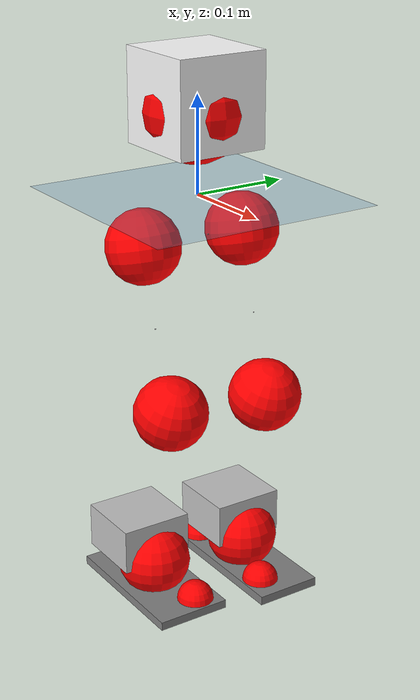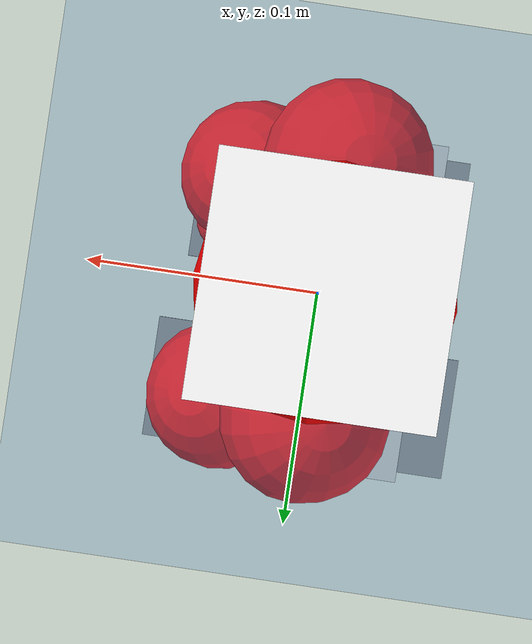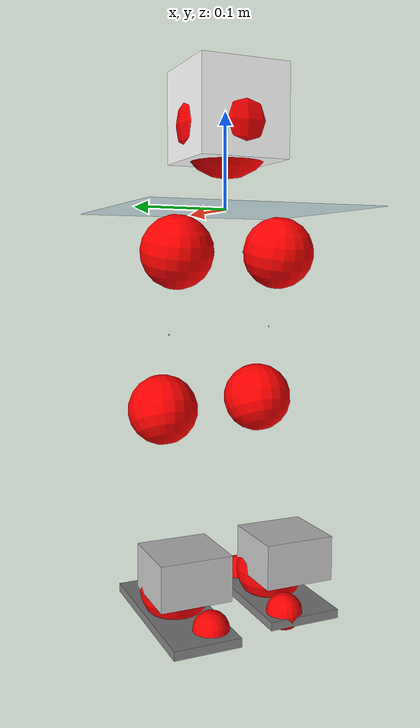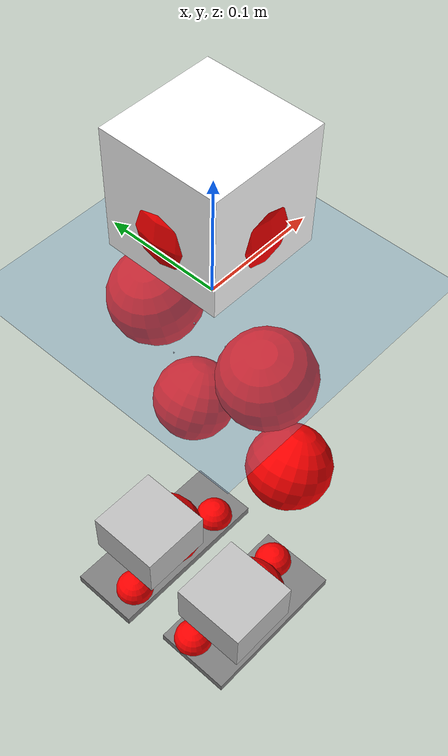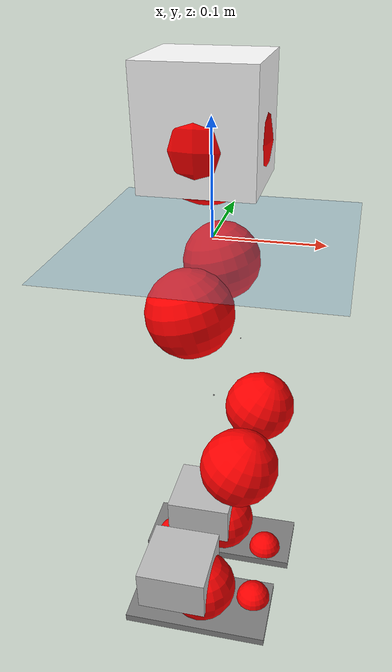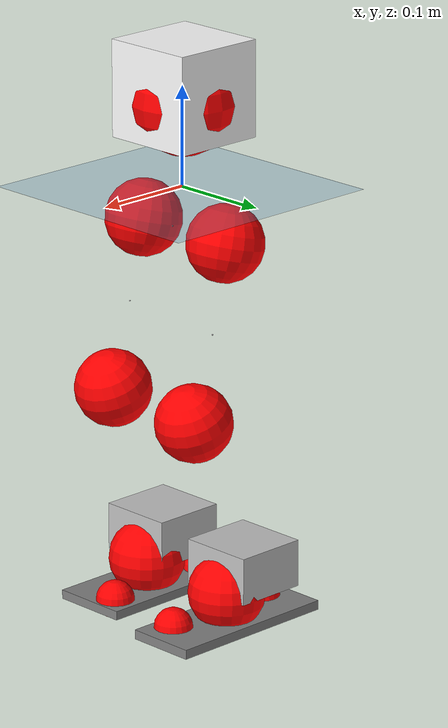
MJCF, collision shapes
<mujoco model="pi_12dof_release_v1">
  <compiler angle="radian" assetdir="assets" balanceinertia="true" inertiafromgeom="false"/>

  <option timestep="0.005" density="1.2" viscosity="2e-05"/>

  <size nkey="1"/>

  <visual>
    <quality shadowsize="8192"/>
    <map shadowclip="0.5"/>
  </visual>

  <default>
    <default class="/">
      <joint armature="0.01" damping="0.01" frictionloss="0.01"/>
      <geom contype="0" conaffinity="0" group="1" solref="-1000 -80"/>
      <site size="0.01 0.005 0.005" group="5"/>
      <general forcelimited="true" biastype="affine" gainprm="20" biasprm="0 -20 -0.5"/>
      <default class="foot">
        <geom size="0.0845 0.036 0.005" type="box" condim="6" group="4" priority="1" friction="0.9 0.2 0.2" solimp="0.015 1 0.005"/>
      </default>
      <default class="reward_collision_sphere">
        <geom group="5" rgba="1 0 0 1"/>
      </default>
    </default>
  </default>

  <asset>
    <texture type="skybox" colorspace="auto" name="//unnamed_texture_0" builtin="gradient" rgb1="0.95 0.95 0.95" rgb2="0.95 0.95 0.95" width="100" height="600"/>
    <texture type="2d" colorspace="auto" name="texplane" builtin="checker" rgb1="0.345 0.575 0.748" rgb2="0.345 0.575 0.748" markrgb="1 1 1" width="512" height="512"/>
    <material name="MatPlane" class="/" texture="texplane" texuniform="true" texrepeat="2 2" specular="0.9"/>
    <mesh name="baselink_1" class="/" file="baselink_1.STL"/>
    <mesh name="r_hip_pitch_link" class="/" file="r_hip_pitch_link.STL"/>
    <mesh name="r_hip_roll_link" class="/" file="r_hip_roll_link.STL"/>
    <mesh name="r_thigh_link" class="/" file="r_thigh_link.STL"/>
    <mesh name="r_calf_link" class="/" file="r_calf_link.STL"/>
    <mesh name="r_ankle_pitch_link" class="/" file="r_ankle_pitch_link.STL"/>
    <mesh name="r_ankle_roll_link" class="/" file="r_ankle_roll_link.STL"/>
    <mesh name="l_hip_pitch_link" class="/" file="l_hip_pitch_link.STL"/>
    <mesh name="l_hip_roll_link" class="/" file="l_hip_roll_link.STL"/>
    <mesh name="l_thigh_link" class="/" file="l_thigh_link.STL"/>
    <mesh name="l_calf_link" class="/" file="l_calf_link.STL"/>
    <mesh name="l_ankle_pitch_link" class="/" file="l_ankle_pitch_link.STL"/>
    <mesh name="l_ankle_roll_link" class="/" file="l_ankle_roll_link.STL"/>
  </asset>

  <worldbody>
    <geom name="floor" class="/" size="100 100 0.125" type="plane" group="0" material="MatPlane"/>
    <light name="toplight_shadow" class="/" pos="0 0 5" dir="0.0990148 0.0990148 -0.990148" type="directional" ambient="0.04 0.04 0.04" diffuse="0.55 0.55 0.55" specular="0.12 0.12 0.12"/>
    <light name="toplight_fill" class="/" pos="0 0 5" dir="0.0990148 0.0990148 -0.990148" type="directional" castshadow="false" ambient="0.04 0.04 0.04" diffuse="0.3 0.3 0.3" specular="0.08 0.08 0.08"/>
    <body name="trunk" pos="-0.00254294 -0.000194859 -0.00279004" quat="0.999999 0.00132614 -2.02911e-06 -0.000386856">
      <inertial pos="-0.000747953 0.00214847 0.0488494" quat="0.689982 0.0163669 0.0071271 0.723606" mass="1.93608" diaginertia="0.00541958 0.00224711 0.0124991"/>
      <joint name="//unnamed_joint_0" type="free"/>
      <geom name="//unnamed_geom_1" class="/" type="mesh" density="0" rgba="1 1 1 1" mesh="baselink_1"/>
      <geom name="//unnamed_geom_2" class="/" size="0.0480993 0.0480993 0.0480993" pos="0 0 0.0994535" type="box" rgba="1 1 1 1"/>
      <geom name="//unnamed_geom_3" class="reward_collision_sphere" size="0.0529092" pos="0 0 0.0870218"/>
      <site name="imu" class="/" pos="0.0141427 0.00105355 -0.0111387" size="0.00961986"/>
      <camera name="track" class="/" pos="0 -1.51456 0" quat="0.707107 0.707107 0 0" mode="trackcom"/>
      <camera name="ego_camera" class="/" pos="0.0664132 0 0.22377" quat="-0.5 -0.5 0.5 0.5"/>
      <body name="r_hip_pitch_link" pos="-0.00182353 -0.0177574 -0.0415826" quat="0.992196 -1.95534e-05 -0.124685 1.06713e-05">
        <inertial pos="-0.00199893 -0.0421423 -0.00074654" quat="-0.0278714 0.701377 -0.0225154 0.71189" mass="0.332535" diaginertia="5.98389e-05 2.48617e-05 0.000258298"/>
        <joint name="r_hip_pitch_joint" class="/" pos="0 0 0" axis="-0.00238778 -0.999979 -0.00595717" range="-1.764 1.22911" armature="0.00827574" damping="0.0151228" frictionloss="0.0103768"/>
        <geom name="//unnamed_geom_4" class="/" type="mesh" density="0" rgba="0.75294 0.75294 0.75294 1" mesh="r_hip_pitch_link"/>
        <geom name="//unnamed_geom_5" class="/" size="0.000480993 0.000480993 0.000480993" type="box" rgba="0.75294 0.75294 0.75294 1"/>
        <body name="r_hip_roll_link" pos="-0.00168783 -0.0421466 -9.18692e-05" quat="1 0.000247685 -0.000108508 0.000199574">
          <inertial pos="-0.00153742 -0.00100002 -0.0755131" quat="0.707325 -0.0752854 -0.0894756 0.69715" mass="0.340353" diaginertia="0.000180114 6.59727e-05 0.000378834"/>
          <joint name="r_hip_roll_joint" class="/" pos="0 0 0" axis="-0.999927 0.00781674 0.00916057" range="-0.133192 0.521502" armature="0.0107171" damping="0.000350295" frictionloss="0.00866802"/>
          <geom name="//unnamed_geom_6" class="/" type="mesh" density="0" rgba="0.75294 0.75294 0.75294 1" mesh="r_hip_roll_link"/>
          <geom name="//unnamed_geom_7" class="/" size="0.000480993 0.000480993 0.000480993" type="box" rgba="0.75294 0.75294 0.75294 1"/>
          <geom name="//unnamed_geom_8" class="reward_collision_sphere" size="0.0384795"/>
          <body name="r_thigh_link" pos="-0.000812255 0.000652918 -0.0831232" quat="1 0.000232294 0.00018622 -0.000274181">
            <inertial pos="-0.000988212 -0.00212803 -0.056375" quat="0.7386 0.674144 -0.000465158 9.93273e-05" mass="0.101108" diaginertia="6.98435e-05 2.31453e-05 0.000171703"/>
            <joint name="r_thigh_joint" class="/" pos="0 0 0" axis="0.015414 -0.00113103 -0.999881" range="-0.269277 0.638739" armature="0.00981474" damping="0" frictionloss="0.00974789"/>
            <geom name="//unnamed_geom_9" class="/" type="mesh" density="0" rgba="0.75294 0.75294 0.75294 1" mesh="r_thigh_link"/>
            <geom name="//unnamed_geom_10" class="/" size="0.000480993 0.000480993 0.000480993" type="box" rgba="0.75294 0.75294 0.75294 1"/>
            <body name="r_calf_link" pos="0.00312095 0.00159869 -0.0864941" quat="0.947632 -8.97051e-05 0.319365 2.67859e-05">
              <inertial pos="-0.00229362 -0.00341235 -0.0865921" quat="0.999953 -0.00259435 -0.00283457 0.00885132" mass="0.726694" diaginertia="0.00186666 0.000907272 0.000525492"/>
              <joint name="r_calf_joint" class="/" pos="0 0 0" axis="0.0012889 -0.999984 -0.0054747" range="-1.62768 0.654713" armature="0.00845086" damping="0.00670482" frictionloss="0.00992267"/>
              <geom name="//unnamed_geom_11" class="/" type="mesh" density="0" rgba="0.75294 0.75294 0.75294 1" mesh="r_calf_link"/>
              <geom name="//unnamed_geom_12" class="/" size="0.000480993 0.000480993 0.000480993" type="box" rgba="0.75294 0.75294 0.75294 1"/>
              <geom name="//unnamed_geom_13" class="reward_collision_sphere" size="0.0384795"/>
              <body name="r_ankle_pitch_link" pos="0.00259856 -0.0008695 -0.175675" quat="0.980145 -0.000292293 -0.19828 -0.00100343">
                <inertial pos="0.00414383 0.00257762 -0.000750635" quat="0.000861363 0.708029 -0.0029239 0.706177" mass="0.161843" diaginertia="0.000163266 5.59234e-05 0.000360149"/>
                <joint name="r_ankle_pitch_joint" class="/" pos="0 0 0" axis="-0.00673468 -0.99995 -0.00736646" stiffness="0.00559811" range="-1.28703 0.504417" armature="0.00952144" damping="0.0128701" frictionloss="0.0103923"/>
                <geom name="//unnamed_geom_14" class="/" type="mesh" density="0" rgba="0.75294 0.75294 0.75294 1" mesh="r_ankle_pitch_link"/>
                <geom name="//unnamed_geom_15" class="/" size="0.0375175 0.0384795 0.0240497" type="box" rgba="0.75294 0.75294 0.75294 1"/>
                <body name="r_ankle_roll_link" pos="0.0690025 0.00362087 0.000450797" quat="1 3.70864e-05 -0.000131083 0.000270792">
                  <inertial pos="-0.0208346 -0.0012102 -0.018451" quat="0.563707 0.421254 0.443216 0.555282" mass="0.451239" diaginertia="0.000639169 0.00025808 0.000832798"/>
                  <joint name="r_ankle_roll_joint" class="/" pos="0 0 0" axis="-0.999981 -0.00331053 -0.00526109" range="-0.0963782 0.119339" armature="0.009196" damping="0.0169774" frictionloss="0.0082592"/>
                  <geom name="//unnamed_geom_16" class="/" type="mesh" density="0" rgba="0.75294 0.75294 0.75294 1" mesh="r_ankle_roll_link"/>
                  <geom name="//unnamed_geom_17" class="/" type="mesh" rgba="0.75294 0.75294 0.75294 1" mesh="r_ankle_roll_link"/>
                  <geom name="right_foot" class="foot" size="0.0793952 0.0394283 0.00457313" pos="-0.045161 0 -0.0546994"/>
                  <geom name="//unnamed_geom_19" class="reward_collision_sphere" size="0.0384795" pos="-0.0442755 0 -0.0248634"/>
                  <geom name="//unnamed_geom_20" class="reward_collision_sphere" size="0.0192397" pos="0.0132826 0.0151456 -0.0497267"/>
                  <geom name="//unnamed_geom_21" class="reward_collision_sphere" size="0.0192397" pos="-0.106261 0.0151456 -0.0497267"/>
                  <site name="right_foot" class="foot" pos="-0.045161 0 -0.0546994" size="0.00961986"/>
                </body>
              </body>
            </body>
          </body>
        </body>
      </body>
      <body name="l_hip_pitch_link" pos="-0.000861122 0.0148603 -0.0418494" quat="0.992209 0.000118058 -0.124581 -4.43854e-05">
        <inertial pos="0.00138056 0.0415759 -0.00146587" quat="-0.0391619 0.705962 0.0280797 0.706609" mass="0.354244" diaginertia="7.17654e-05 2.54582e-05 0.000297396"/>
        <joint name="l_hip_pitch_joint" class="/" pos="0 0 0" axis="0.00300757 0.999927 0.0116934" stiffness="0.000694013" range="-1.19851 1.73195" armature="0.010826" damping="0.00712137" frictionloss="0.0096532"/>
        <geom name="//unnamed_geom_22" class="/" type="mesh" density="0" rgba="0.75294 0.75294 0.75294 1" mesh="l_hip_pitch_link"/>
        <geom name="//unnamed_geom_23" class="/" size="0.000480993 0.000480993 0.000480993" type="box" rgba="0.75294 0.75294 0.75294 1"/>
        <body name="l_hip_roll_link" pos="0.000224146 0.0410586 -0.000368957" quat="1 8.90879e-05 -0.000431296 0.000103215">
          <inertial pos="-0.00296391 0.00054074 -0.0754412" quat="0.6983 -0.0819525 -0.0780511 0.706802" mass="0.355274" diaginertia="0.000185249 7.06359e-05 0.000387922"/>
          <joint name="l_hip_roll_joint" class="/" pos="0 0 0" axis="-0.999999 -0.00112278 -0.000158978" stiffness="0.00834911" range="-0.516226 0.160533" armature="0.00830361" damping="0.00786233" frictionloss="0.00955201"/>
          <geom name="//unnamed_geom_24" class="/" type="mesh" density="0" rgba="0.75294 0.75294 0.75294 1" mesh="l_hip_roll_link"/>
          <geom name="//unnamed_geom_25" class="/" size="0.000480993 0.000480993 0.000480993" type="box" rgba="0.75294 0.75294 0.75294 1"/>
          <geom name="//unnamed_geom_26" class="reward_collision_sphere" size="0.0384795"/>
          <body name="l_thigh_link" pos="-0.00265418 0.00224691 -0.0887495" quat="1 0.000366136 -0.00017557 9.61889e-06">
            <inertial pos="0.00297447 -0.004099 -0.0563465" quat="0.681363 0.731916 0.00386724 -0.00542098" mass="0.0979002" diaginertia="6.80323e-05 2.44441e-05 0.000168387"/>
            <joint name="l_thigh_joint" class="/" pos="0 0 0" axis="-0.000610941 0.000686922 -1" stiffness="0.00177881" range="-0.599008 0.242882" armature="0.00951119" damping="0.00554912" frictionloss="0.00983522"/>
            <geom name="//unnamed_geom_27" class="/" type="mesh" density="0" rgba="0.75294 0.75294 0.75294 1" mesh="l_thigh_link"/>
            <geom name="//unnamed_geom_28" class="/" size="0.000480993 0.000480993 0.000480993" type="box" rgba="0.75294 0.75294 0.75294 1"/>
            <body name="l_calf_link" pos="0.00187882 -0.00137514 -0.0873316" quat="0.947523 -0.000108728 0.319687 -0.000802411">
              <inertial pos="0.000463047 0.00395091 -0.0894637" quat="0.999982 0.00319088 0.000731361 0.00507562" mass="0.745969" diaginertia="0.00190726 0.000863485 0.000514899"/>
              <joint name="l_calf_joint" class="/" pos="0 0 0" axis="0.00284106 0.999988 -0.00403529" range="-0.648825 1.67644" armature="0.0096243" damping="0.00684371" frictionloss="0.0106145"/>
              <geom name="//unnamed_geom_29" class="/" type="mesh" density="0" rgba="0.75294 0.75294 0.75294 1" mesh="l_calf_link"/>
              <geom name="//unnamed_geom_30" class="/" size="0.000480993 0.000480993 0.000480993" type="box" rgba="0.75294 0.75294 0.75294 1"/>
              <geom name="//unnamed_geom_31" class="reward_collision_sphere" size="0.0384795"/>
              <body name="l_ankle_pitch_link" pos="0.00220751 0.00101083 -0.173578" quat="0.980067 6.2346e-06 -0.19867 -3.11896e-05">
                <inertial pos="0.00145852 0.00189148 -0.000342679" quat="-0.00197267 0.707285 0.00234938 0.706922" mass="0.148936" diaginertia="0.000168868 5.44093e-05 0.000355889"/>
                <joint name="l_ankle_pitch_joint" class="/" pos="0 0 0" axis="6.96106e-06 1 0.00010723" range="-0.528571 1.29991" armature="0.00867754" damping="0.00833975" frictionloss="0.0100537"/>
                <geom name="//unnamed_geom_32" class="/" type="mesh" density="0" rgba="0.75294 0.75294 0.75294 1" mesh="l_ankle_pitch_link"/>
                <geom name="//unnamed_geom_33" class="/" size="0.0375175 0.0384795 0.0240497" type="box" rgba="0.75294 0.75294 0.75294 1"/>
                <body name="l_ankle_roll_link" pos="0.0674591 0.00079981 0.000957337" quat="1 -0.000105794 9.92338e-05 0.000224181">
                  <inertial pos="-0.0201218 -0.000876776 -0.0184698" quat="0.55973 0.430913 0.434165 0.559032" mass="0.433029" diaginertia="0.000589703 0.000250998 0.000802552"/>
                  <joint name="l_ankle_roll_joint" class="/" pos="0 0 0" axis="-0.999977 0.00669824 -0.000556618" stiffness="0.000132978" range="-0.118171 0.152902" armature="0.0107989" damping="0.0151783" frictionloss="0.00965658"/>
                  <geom name="//unnamed_geom_34" class="/" type="mesh" density="0" rgba="0.75294 0.75294 0.75294 1" mesh="l_ankle_roll_link"/>
                  <geom name="//unnamed_geom_35" class="/" type="mesh" rgba="0.75294 0.75294 0.75294 1" mesh="l_ankle_roll_link"/>
                  <geom name="left_foot" class="foot" size="0.0904838 0.0357225 0.00479572" pos="-0.045161 0 -0.0546994"/>
                  <geom name="//unnamed_geom_37" class="reward_collision_sphere" size="0.0384795" pos="-0.0442755 0 -0.0248634"/>
                  <geom name="//unnamed_geom_38" class="reward_collision_sphere" size="0.0192397" pos="0.0132826 -0.0151456 -0.0497267"/>
                  <geom name="//unnamed_geom_39" class="reward_collision_sphere" size="0.0192397" pos="-0.106261 -0.0151456 -0.0497267"/>
                  <site name="left_foot" class="foot" pos="-0.045161 0 -0.0546994" size="0.00961986"/>
                </body>
              </body>
            </body>
          </body>
        </body>
      </body>
    </body>
  </worldbody>

  <contact>
    <pair class="/" geom1="floor" geom2="right_foot" name="//unnamed_contact_1"/>
    <pair class="/" geom1="floor" geom2="left_foot" name="//unnamed_contact_0"/>
  </contact>

  <actuator>
    <general name="r_hip_pitch_joint" class="/" joint="r_hip_pitch_joint" forcerange="-20.1607 20.1607" gainprm="19.3606" biasprm="0 -19.3606 -0.451206"/>
    <general name="r_hip_roll_joint" class="/" joint="r_hip_roll_joint" forcerange="-19.1066 19.1066" gainprm="19.3606" biasprm="0 -19.3606 -0.451206"/>
    <general name="r_thigh_joint" class="/" joint="r_thigh_joint" forcerange="-22.4117 22.4117" gainprm="19.3606" biasprm="0 -19.3606 -0.451206"/>
    <general name="r_calf_joint" class="/" joint="r_calf_joint" forcerange="-18.6632 18.6632" gainprm="19.3606" biasprm="0 -19.3606 -0.451206"/>
    <general name="r_ankle_pitch_joint" class="/" joint="r_ankle_pitch_joint" forcerange="-21.874 21.874" gainprm="19.3606" biasprm="0 -19.3606 -0.451206"/>
    <general name="r_ankle_roll_joint" class="/" joint="r_ankle_roll_joint" forcerange="-22.3097 22.3097" gainprm="19.3606" biasprm="0 -19.3606 -0.451206"/>
    <general name="l_hip_pitch_joint" class="/" joint="l_hip_pitch_joint" forcerange="-20.6055 20.6055" gainprm="19.3606" biasprm="0 -19.3606 -0.451206"/>
    <general name="l_hip_roll_joint" class="/" joint="l_hip_roll_joint" forcerange="-21.5731 21.5731" gainprm="19.3606" biasprm="0 -19.3606 -0.451206"/>
    <general name="l_thigh_joint" class="/" joint="l_thigh_joint" forcerange="-19.2994 19.2994" gainprm="19.3606" biasprm="0 -19.3606 -0.451206"/>
    <general name="l_calf_joint" class="/" joint="l_calf_joint" forcerange="-19.5324 19.5324" gainprm="19.3606" biasprm="0 -19.3606 -0.451206"/>
    <general name="l_ankle_pitch_joint" class="/" joint="l_ankle_pitch_joint" forcerange="-22.297 22.297" gainprm="19.3606" biasprm="0 -19.3606 -0.451206"/>
    <general name="l_ankle_roll_joint" class="/" joint="l_ankle_roll_joint" forcerange="-19.8342 19.8342" gainprm="19.3606" biasprm="0 -19.3606 -0.451206"/>
  </actuator>

  <sensor>
    <gyro site="imu" name="imu_angular_velocity"/>
    <velocimeter site="imu" name="imu_linear_velocity"/>
    <framelinvel objtype="site" objname="left_foot" name="left_foot_global_linear_velocity"/>
    <framelinvel objtype="site" objname="right_foot" name="right_foot_global_linear_velocity"/>
  </sensor>

  <keyframe>
    <key name="home" qpos="0 0 0.291 1 0 0 0 0.4 0 0 -0.8 0.4 0 -0.4 0 0 0.8 -0.4 0"/>
  </keyframe>
</mujoco>
